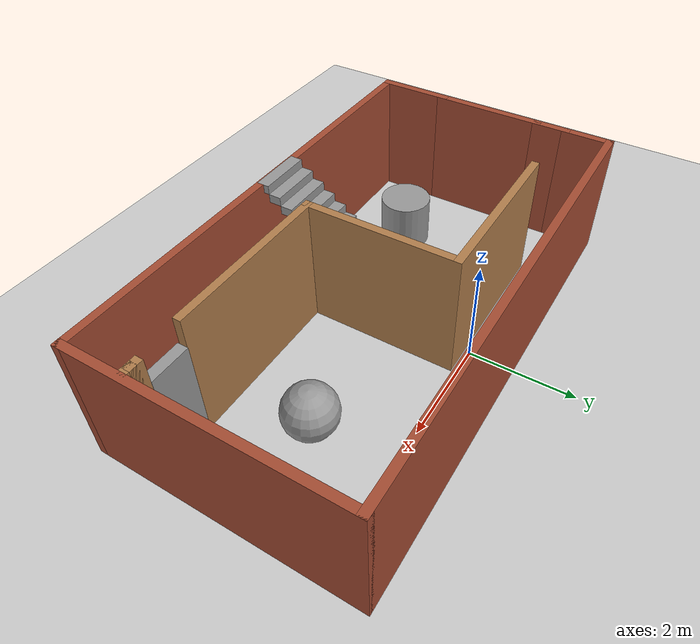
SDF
<sdf version="1.7">
 <world name="default">
  <light name="sun" type="directional">
   <pose>0 0 10 0 -0 0</pose>
   <diffuse>0.8 0.8 0.8 1</diffuse>
   <specular>0.2 0.2 0.2 1</specular>
   <attenuation>
    <range>1000</range>
    <constant>0.9</constant>
    <linear>0.01</linear>
    <quadratic>0.001</quadratic>
   </attenuation>
   <direction>-0.5 0.1 -0.9</direction>
   <spot><inner_angle>0</inner_angle><outer_angle>0</outer_angle><falloff>0</falloff></spot>
  </light>
  <model name="ground_plane">
   <static>1</static>
   <link name="link">
    <collision name="collision">
     <geometry><plane><normal>0 0 1</normal><size>100 100</size></plane></geometry>
     <surface><friction><ode><mu>100</mu><mu2>50</mu2></ode></friction></surface>
    </collision>
    <visual name="visual">
     <cast_shadows>0</cast_shadows>
     <geometry><plane><normal>0 0 1</normal><size>100 100</size></plane></geometry>
     <material>
      <script><uri>file://media/materials/scripts/gazebo.material</uri><name>Gazebo/Grey</name></script>
     </material>
    </visual>
   </link>
  </model>
  <gravity>0 0 -9.8</gravity>
  <magnetic_field>6e-06 2.3e-05 -4.2e-05</magnetic_field>
  <atmosphere type="adiabatic"/>
  <physics type="ode">
   <max_step_size>0.001</max_step_size>
   <real_time_factor>1</real_time_factor>
   <real_time_update_rate>1000</real_time_update_rate>
  </physics>
  <scene><ambient>0.4 0.4 0.4 1</ambient><background>0.7 0.7 0.7 1</background><shadows>1</shadows></scene>
  <audio><device>default</device></audio>
  <spherical_coordinates>
   <surface_model>EARTH_WGS84</surface_model>
   <latitude_deg>0</latitude_deg>
   <longitude_deg>0</longitude_deg>
   <elevation>0</elevation>
   <heading_deg>0</heading_deg>
  </spherical_coordinates>
  <model name="room_world">
   <pose>0.365 -1.655 0 0 -0 0</pose>
   <link name="Door_0">
    <collision name="Door_0_Collision">
     <geometry><box><size>0.732704 0.2 2</size></box></geometry>
     <pose>0 0 1 0 -0 0</pose>
    </collision>
    <visual name="Door_0_Visual">
     <pose>0 0 1 0 -0 0</pose>
     <geometry><box><size>0.732704 0.2 2</size></box></geometry>
     <material>
      <script><uri>file://media/materials/scripts/gazebo.material</uri><name>Gazebo/Grey</name></script>
     </material>
    </visual>
    <pose>3.67152 -1.3541 0 0 -0 0</pose>
   </link>
   <link name="Stairs_1">
    <visual name="Stairs_1_Visual_0">
     <pose>-0.450052 0.902794 0.083333 0 -0 0</pose>
     <geometry><box><size>1 0.233333 0.166667</size></box></geometry>
     <material>
      <script><uri>file://media/materials/scripts/gazebo.material</uri><name>Gazebo/Grey</name></script>
      <ambient>1 1 1 1</ambient>
     </material>
     <meta><layer>0</layer></meta>
    </visual>
    <collision name="Stairs_1_Collision_0">
     <geometry><box><size>1 0.233333 0.166667</size></box></geometry>
     <pose>-0.450052 0.902794 0.083333 0 -0 0</pose>
    </collision>
    <visual name="Stairs_1_Visual_1">
     <pose>-0.450052 0.669461 0.25 0 -0 0</pose>
     <geometry><box><size>1 0.233333 0.166667</size></box></geometry>
     <material>
      <script><uri>file://media/materials/scripts/gazebo.material</uri><name>Gazebo/Grey</name></script>
      <ambient>1 1 1 1</ambient>
     </material>
     <meta><layer>0</layer></meta>
    </visual>
    <collision name="Stairs_1_Collision_1">
     <geometry><box><size>1 0.233333 0.166667</size></box></geometry>
     <pose>-0.450052 0.669461 0.25 0 -0 0</pose>
    </collision>
    <visual name="Stairs_1_Visual_2">
     <pose>-0.450052 0.436127 0.416667 0 -0 0</pose>
     <geometry><box><size>1 0.233333 0.166667</size></box></geometry>
     <material>
      <script><uri>file://media/materials/scripts/gazebo.material</uri><name>Gazebo/Grey</name></script>
      <ambient>1 1 1 1</ambient>
     </material>
     <meta><layer>0</layer></meta>
    </visual>
    <collision name="Stairs_1_Collision_2">
     <geometry><box><size>1 0.233333 0.166667</size></box></geometry>
     <pose>-0.450052 0.436127 0.416667 0 -0 0</pose>
    </collision>
    <visual name="Stairs_1_Visual_3">
     <pose>-0.450052 0.202794 0.583333 0 -0 0</pose>
     <geometry><box><size>1 0.233333 0.166667</size></box></geometry>
     <material>
      <script><uri>file://media/materials/scripts/gazebo.material</uri><name>Gazebo/Grey</name></script>
      <ambient>1 1 1 1</ambient>
     </material>
     <meta><layer>0</layer></meta>
    </visual>
    <collision name="Stairs_1_Collision_3">
     <geometry><box><size>1 0.233333 0.166667</size></box></geometry>
     <pose>-0.450052 0.202794 0.583333 0 -0 0</pose>
    </collision>
    <visual name="Stairs_1_Visual_4">
     <pose>-0.450052 -0.030539 0.75 0 -0 0</pose>
     <geometry><box><size>1 0.233333 0.166667</size></box></geometry>
     <material>
      <script><uri>file://media/materials/scripts/gazebo.material</uri><name>Gazebo/Grey</name></script>
      <ambient>1 1 1 1</ambient>
     </material>
     <meta><layer>0</layer></meta>
    </visual>
    <collision name="Stairs_1_Collision_4">
     <geometry><box><size>1 0.233333 0.166667</size></box></geometry>
     <pose>-0.450052 -0.030539 0.75 0 -0 0</pose>
    </collision>
    <visual name="Stairs_1_Visual_5">
     <pose>-0.450052 -0.263873 0.916667 0 -0 0</pose>
     <geometry><box><size>1 0.233333 0.166667</size></box></geometry>
     <material>
      <script><uri>file://media/materials/scripts/gazebo.material</uri><name>Gazebo/Grey</name></script>
      <ambient>1 1 1 1</ambient>
     </material>
     <meta><layer>0</layer></meta>
    </visual>
    <collision name="Stairs_1_Collision_5">
     <geometry><box><size>1 0.233333 0.166667</size></box></geometry>
     <pose>-0.450052 -0.263873 0.916667 0 -0 0</pose>
    </collision>
    <visual name="Stairs_1_Visual_6">
     <pose>-0.450052 -0.497206 1.08333 0 -0 0</pose>
     <geometry><box><size>1 0.233333 0.166667</size></box></geometry>
     <material>
      <script><uri>file://media/materials/scripts/gazebo.material</uri><name>Gazebo/Grey</name></script>
      <ambient>1 1 1 1</ambient>
     </material>
     <meta><layer>0</layer></meta>
    </visual>
    <collision name="Stairs_1_Collision_6">
     <geometry><box><size>1 0.233333 0.166667</size></box></geometry>
     <pose>-0.450052 -0.497206 1.08333 0 -0 0</pose>
    </collision>
    <visual name="Stairs_1_Visual_7">
     <pose>-0.450052 -0.730539 1.25 0 -0 0</pose>
     <geometry><box><size>1 0.233333 0.166667</size></box></geometry>
     <material>
      <script><uri>file://media/materials/scripts/gazebo.material</uri><name>Gazebo/Grey</name></script>
      <ambient>1 1 1 1</ambient>
     </material>
     <meta><layer>0</layer></meta>
    </visual>
    <collision name="Stairs_1_Collision_7">
     <geometry><box><size>1 0.233333 0.166667</size></box></geometry>
     <pose>-0.450052 -0.730539 1.25 0 -0 0</pose>
    </collision>
    <visual name="Stairs_1_Visual_8">
     <pose>-0.450052 -0.963873 1.41667 0 -0 0</pose>
     <geometry><box><size>1 0.233333 0.166667</size></box></geometry>
     <material>
      <script><uri>file://media/materials/scripts/gazebo.material</uri><name>Gazebo/Grey</name></script>
      <ambient>1 1 1 1</ambient>
     </material>
     <meta><layer>0</layer></meta>
    </visual>
    <collision name="Stairs_1_Collision_8">
     <geometry><box><size>1 0.233333 0.166667</size></box></geometry>
     <pose>-0.450052 -0.963873 1.41667 0 -0 0</pose>
    </collision>
    <visual name="Stairs_1_Visual_9">
     <pose>-0.450052 -1.19721 1.58333 0 -0 0</pose>
     <geometry><box><size>1 0.233333 0.166667</size></box></geometry>
     <material>
      <script><uri>file://media/materials/scripts/gazebo.material</uri><name>Gazebo/Grey</name></script>
      <ambient>1 1 1 1</ambient>
     </material>
     <meta><layer>0</layer></meta>
    </visual>
    <collision name="Stairs_1_Collision_9">
     <geometry><box><size>1 0.233333 0.166667</size></box></geometry>
     <pose>-0.450052 -1.19721 1.58333 0 -0 0</pose>
    </collision>
    <visual name="Stairs_1_Visual_10">
     <pose>-0.450052 -1.43054 1.75 0 -0 0</pose>
     <geometry><box><size>1 0.233333 0.166667</size></box></geometry>
     <material>
      <script><uri>file://media/materials/scripts/gazebo.material</uri><name>Gazebo/Grey</name></script>
      <ambient>1 1 1 1</ambient>
     </material>
     <meta><layer>0</layer></meta>
    </visual>
    <collision name="Stairs_1_Collision_10">
     <geometry><box><size>1 0.233333 0.166667</size></box></geometry>
     <pose>-0.450052 -1.43054 1.75 0 -0 0</pose>
    </collision>
    <visual name="Stairs_1_Visual_11">
     <pose>-0.450052 -1.66387 1.91667 0 -0 0</pose>
     <geometry><box><size>1 0.233333 0.166667</size></box></geometry>
     <material>
      <script><uri>file://media/materials/scripts/gazebo.material</uri><name>Gazebo/Grey</name></script>
      <ambient>1 1 1 1</ambient>
     </material>
     <meta><layer>0</layer></meta>
    </visual>
    <collision name="Stairs_1_Collision_11">
     <geometry><box><size>1 0.233333 0.166667</size></box></geometry>
     <pose>-0.450052 -1.66387 1.91667 0 -0 0</pose>
    </collision>
    <visual name="Stairs_1_Visual_12">
     <pose>-0.450052 -1.89721 2.08333 0 -0 0</pose>
     <geometry><box><size>1 0.233333 0.166667</size></box></geometry>
     <material>
      <script><uri>file://media/materials/scripts/gazebo.material</uri><name>Gazebo/Grey</name></script>
      <ambient>1 1 1 1</ambient>
     </material>
     <meta><layer>0</layer></meta>
    </visual>
    <collision name="Stairs_1_Collision_12">
     <geometry><box><size>1 0.233333 0.166667</size></box></geometry>
     <pose>-0.450052 -1.89721 2.08333 0 -0 0</pose>
    </collision>
    <visual name="Stairs_1_Visual_13">
     <pose>-0.450052 -2.13054 2.25 0 -0 0</pose>
     <geometry><box><size>1 0.233333 0.166667</size></box></geometry>
     <material>
      <script><uri>file://media/materials/scripts/gazebo.material</uri><name>Gazebo/Grey</name></script>
      <ambient>1 1 1 1</ambient>
     </material>
     <meta><layer>0</layer></meta>
    </visual>
    <collision name="Stairs_1_Collision_13">
     <geometry><box><size>1 0.233333 0.166667</size></box></geometry>
     <pose>-0.450052 -2.13054 2.25 0 -0 0</pose>
    </collision>
    <visual name="Stairs_1_Visual_14">
     <pose>-0.450052 -2.36387 2.41667 0 -0 0</pose>
     <geometry><box><size>1 0.233333 0.166667</size></box></geometry>
     <material>
      <script><uri>file://media/materials/scripts/gazebo.material</uri><name>Gazebo/Grey</name></script>
      <ambient>1 1 1 1</ambient>
     </material>
     <meta><layer>0</layer></meta>
    </visual>
    <collision name="Stairs_1_Collision_14">
     <geometry><box><size>1 0.233333 0.166667</size></box></geometry>
     <pose>-0.450052 -2.36387 2.41667 0 -0 0</pose>
    </collision>
   </link>
   <link name="Wall_0">
    <collision name="Wall_0_Collision">
     <geometry><box><size>2.25 0.15 2.5</size></box></geometry>
     <pose>0 0 1.25 0 -0 0</pose>
    </collision>
    <visual name="Wall_0_Visual">
     <pose>0 0 1.25 0 -0 0</pose>
     <geometry><box><size>2.25 0.15 2.5</size></box></geometry>
     <material>
      <script><uri>file://media/materials/scripts/gazebo.material</uri><name>Gazebo/Bricks</name></script>
      <ambient>1 1 1 1</ambient>
     </material>
     <meta><layer>0</layer></meta>
    </visual>
    <pose>-4.425 -0.075 0 0 -0 1.5708</pose>
   </link>
   <link name="Wall_1">
    <collision name="Wall_1_Collision">
     <geometry><box><size>0.75 0.15 2.5</size></box></geometry>
     <pose>0 0 1.25 0 -0 0</pose>
    </collision>
    <visual name="Wall_1_Visual">
     <pose>0 0 1.25 0 -0 0</pose>
     <geometry><box><size>0.75 0.15 2.5</size></box></geometry>
     <material>
      <script><uri>file://media/materials/scripts/gazebo.material</uri><name>Gazebo/Bricks</name></script>
      <ambient>1 1 1 1</ambient>
     </material>
     <meta><layer>0</layer></meta>
    </visual>
    <pose>-4.425 1.275 0 0 -0 1.5708</pose>
   </link>
   <link name="Wall_10">
    <collision name="Wall_10_Collision">
     <geometry><box><size>3.25 0.15 2.5</size></box></geometry>
     <pose>0 0 1.25 0 -0 0</pose>
    </collision>
    <visual name="Wall_10_Visual">
     <pose>0 0 1.25 0 -0 0</pose>
     <geometry><box><size>3.25 0.15 2.5</size></box></geometry>
     <material>
      <script><uri>file://media/materials/scripts/gazebo.material</uri><name>Gazebo/Wood</name></script>
      <ambient>1 1 1 1</ambient>
     </material>
     <meta><layer>0</layer></meta>
    </visual>
    <pose>1.66009 -1.37527 0 0 -0 0</pose>
   </link>
   <link name="Wall_12">
    <collision name="Wall_12_Collision">
     <geometry><box><size>0.25 0.15 2.5</size></box></geometry>
     <pose>0 0 1.25 0 -0 0</pose>
    </collision>
    <visual name="Wall_12_Visual">
     <pose>0 0 1.25 0 -0 0</pose>
     <geometry><box><size>0.25 0.15 2.5</size></box></geometry>
     <material>
      <script><uri>file://media/materials/scripts/gazebo.material</uri><name>Gazebo/Wood</name></script>
      <ambient>1 1 1 1</ambient>
     </material>
     <meta><layer>0</layer></meta>
    </visual>
    <pose>4.17778 -1.30847 0 0 -0 0</pose>
   </link>
   <link name="Wall_13">
    <collision name="Wall_13_Collision">
     <geometry><box><size>0.25 0.15 2.5</size></box></geometry>
     <pose>0 0 1.25 0 -0 0</pose>
    </collision>
    <visual name="Wall_13_Visual">
     <pose>0 0 1.25 0 -0 0</pose>
     <geometry><box><size>0.25 0.15 2.5</size></box></geometry>
     <material>
      <script><uri>file://media/materials/scripts/gazebo.material</uri><name>Gazebo/Wood</name></script>
      <ambient>1 1 1 1</ambient>
     </material>
     <meta><layer>0</layer></meta>
    </visual>
    <pose>4.27778 -1.30847 0 0 -0 0</pose>
   </link>
   <link name="Wall_2">
    <collision name="Wall_2_Collision">
     <geometry><box><size>1 0.15 2.5</size></box></geometry>
     <pose>0 0 1.25 0 -0 0</pose>
    </collision>
    <visual name="Wall_2_Visual">
     <pose>0 0 1.25 0 -0 0</pose>
     <geometry><box><size>1 0.15 2.5</size></box></geometry>
     <material>
      <script><uri>file://media/materials/scripts/gazebo.material</uri><name>Gazebo/Bricks</name></script>
      <ambient>1 1 1 1</ambient>
     </material>
     <meta><layer>0</layer></meta>
    </visual>
    <pose>-4.425 2 0 0 -0 1.5708</pose>
   </link>
   <link name="Wall_3">
    <collision name="Wall_3_Collision">
     <geometry><box><size>9 0.15 2.5</size></box></geometry>
     <pose>0 0 1.25 0 -0 0</pose>
    </collision>
    <visual name="Wall_3_Visual">
     <pose>0 0 1.25 0 -0 0</pose>
     <geometry><box><size>9 0.15 2.5</size></box></geometry>
     <material>
      <script><uri>file://media/materials/scripts/gazebo.material</uri><name>Gazebo/Bricks</name></script>
      <ambient>1 1 1 1</ambient>
     </material>
     <meta><layer>0</layer></meta>
    </visual>
    <pose>0 2.425 0 0 -0 0</pose>
   </link>
   <link name="Wall_4">
    <collision name="Wall_4_Collision">
     <geometry><box><size>5 0.15 2.5</size></box></geometry>
     <pose>0 0 1.25 0 -0 0</pose>
    </collision>
    <visual name="Wall_4_Visual">
     <pose>0 0 1.25 0 -0 0</pose>
     <geometry><box><size>5 0.15 2.5</size></box></geometry>
     <material>
      <script><uri>file://media/materials/scripts/gazebo.material</uri><name>Gazebo/Bricks</name></script>
      <ambient>1 1 1 1</ambient>
     </material>
     <meta><layer>0</layer></meta>
    </visual>
    <pose>4.425 0 0 0 -0 -1.5708</pose>
   </link>
   <link name="Wall_5">
    <collision name="Wall_5_Collision">
     <geometry><box><size>9 0.15 2.5</size></box></geometry>
     <pose>0 0 1.25 0 -0 0</pose>
    </collision>
    <visual name="Wall_5_Visual">
     <pose>0 0 1.25 0 -0 0</pose>
     <geometry><box><size>9 0.15 2.5</size></box></geometry>
     <material>
      <script><uri>file://media/materials/scripts/gazebo.material</uri><name>Gazebo/Bricks</name></script>
      <ambient>1 1 1 1</ambient>
     </material>
     <meta><layer>0</layer></meta>
    </visual>
    <pose>0 -2.425 0 0 -0 3.14159</pose>
   </link>
   <link name="Wall_6">
    <collision name="Wall_6_Collision">
     <geometry><box><size>1.5 0.15 2.5</size></box></geometry>
     <pose>0 0 1.25 0 -0 0</pose>
    </collision>
    <visual name="Wall_6_Visual">
     <pose>0 0 1.25 0 -0 0</pose>
     <geometry><box><size>1.5 0.15 2.5</size></box></geometry>
     <material>
      <script><uri>file://media/materials/scripts/gazebo.material</uri><name>Gazebo/Bricks</name></script>
      <ambient>1 1 1 1</ambient>
     </material>
     <meta><layer>0</layer></meta>
    </visual>
    <pose>-4.425 -1.75 0 0 -0 1.5708</pose>
   </link>
   <link name="Wall_8">
    <collision name="Wall_8_Collision">
     <geometry><box><size>3.25 0.15 2.5</size></box></geometry>
     <pose>0 0 1.25 0 -0 0</pose>
    </collision>
    <visual name="Wall_8_Visual">
     <pose>0 0 1.25 0 -0 0</pose>
     <geometry><box><size>3.25 0.15 2.5</size></box></geometry>
     <material>
      <script><uri>file://media/materials/scripts/gazebo.material</uri><name>Gazebo/Wood</name></script>
      <ambient>1 1 1 1</ambient>
     </material>
     <meta><layer>0</layer></meta>
    </visual>
    <pose>-1.43991 1.47473 0 0 -0 0</pose>
   </link>
   <link name="Wall_9">
    <collision name="Wall_9_Collision">
     <geometry><box><size>3 0.15 2.5</size></box></geometry>
     <pose>0 0 1.25 0 -0 0</pose>
    </collision>
    <visual name="Wall_9_Visual">
     <pose>0 0 1.25 0 -0 0</pose>
     <geometry><box><size>3 0.15 2.5</size></box></geometry>
     <material>
      <script><uri>file://media/materials/scripts/gazebo.material</uri><name>Gazebo/Wood</name></script>
      <ambient>1 1 1 1</ambient>
     </material>
     <meta><layer>0</layer></meta>
    </visual>
    <pose>0.110087 0.049729 0 0 -0 -1.5708</pose>
   </link>
   <static>1</static>
  </model>
  <model name="unit_cylinder">
   <pose>-2.37677 -2.67104 0.499991 -0 -0 -0</pose>
   <link name="link">
    <inertial>
     <mass>1</mass>
     <inertia><ixx>0.145833</ixx><ixy>0</ixy><ixz>0</ixz><iyy>0.145833</iyy><iyz>0</iyz><izz>0.125</izz></inertia>
    </inertial>
    <collision name="collision">
     <geometry><cylinder><radius>0.5</radius><length>1</length></cylinder></geometry>
    </collision>
    <visual name="visual">
     <geometry><cylinder><radius>0.5</radius><length>1</length></cylinder></geometry>
     <material>
      <script><name>Gazebo/Grey</name><uri>file://media/materials/scripts/gazebo.material</uri></script>
     </material>
    </visual>
   </link>
  </model>
  <model name="unit_sphere">
   <pose>2.81917 -1.49857 0.5 0 -0 0</pose>
   <link name="link">
    <inertial>
     <mass>1</mass>
     <inertia><ixx>0.1</ixx><ixy>0</ixy><ixz>0</ixz><iyy>0.1</iyy><iyz>0</iyz><izz>0.1</izz></inertia>
    </inertial>
    <collision name="collision"><geometry><sphere><radius>0.5</radius></sphere></geometry></collision>
    <visual name="visual">
     <geometry><sphere><radius>0.5</radius></sphere></geometry>
     <material>
      <script><name>Gazebo/Grey</name><uri>file://media/materials/scripts/gazebo.material</uri></script>
     </material>
    </visual>
   </link>
  </model>
 </world>
</sdf>
